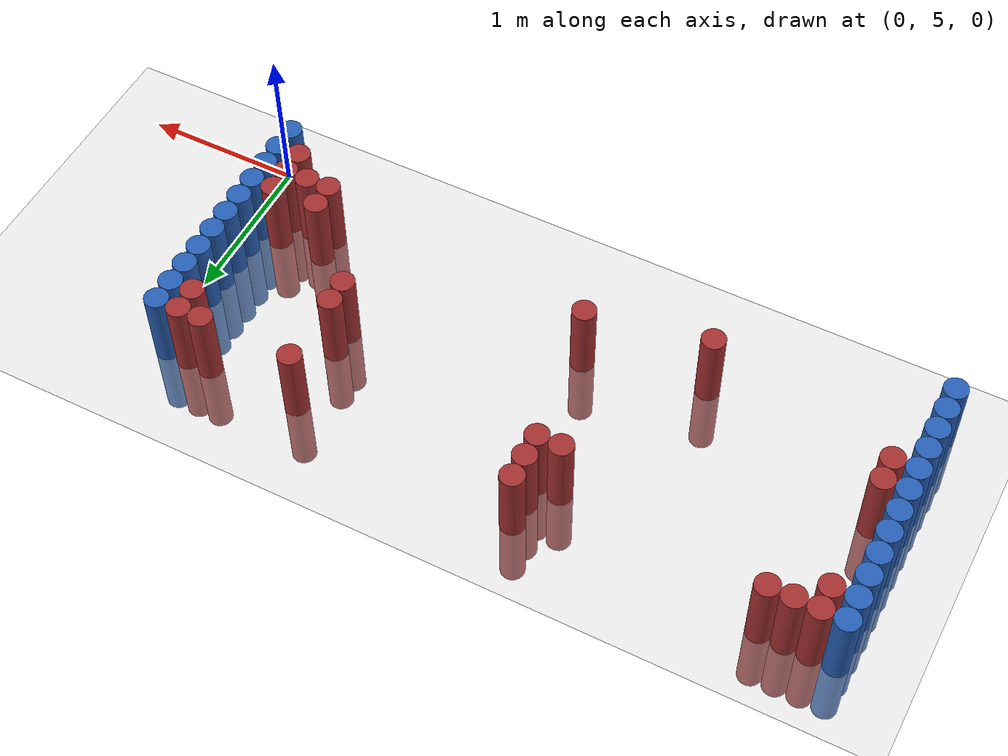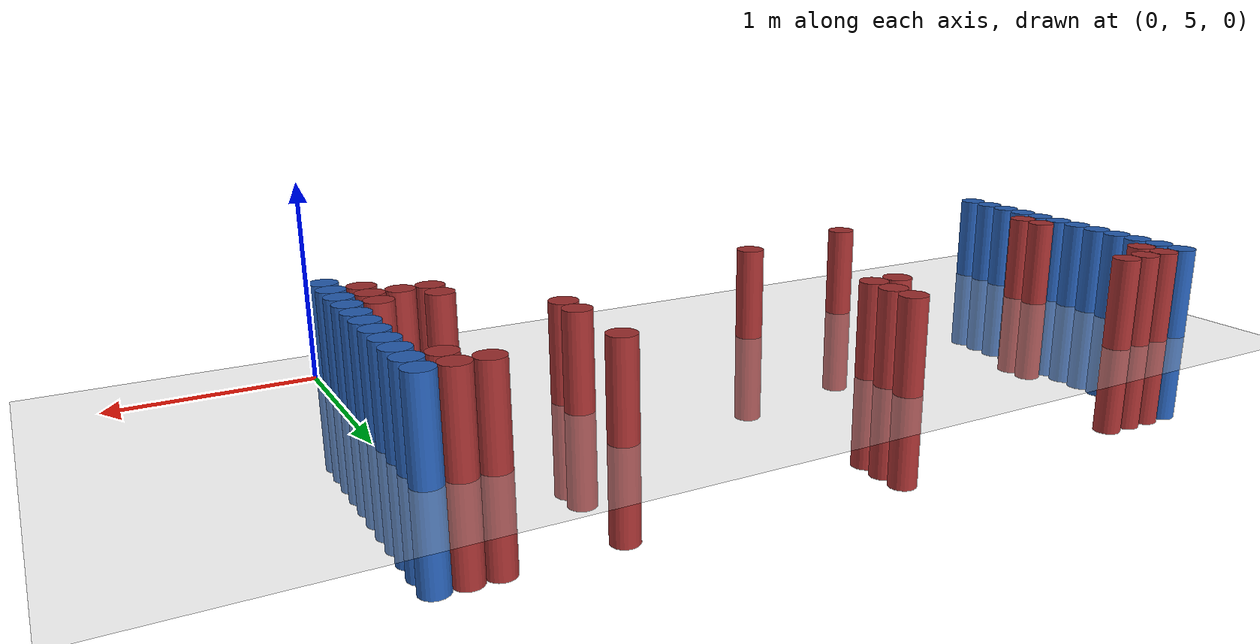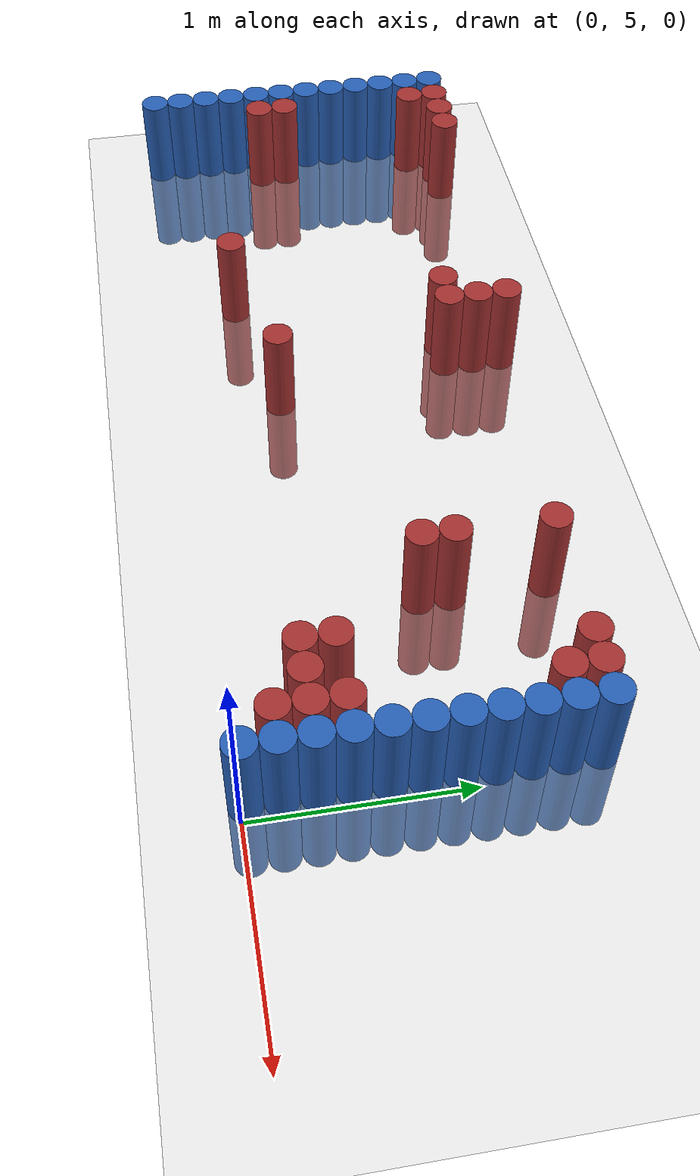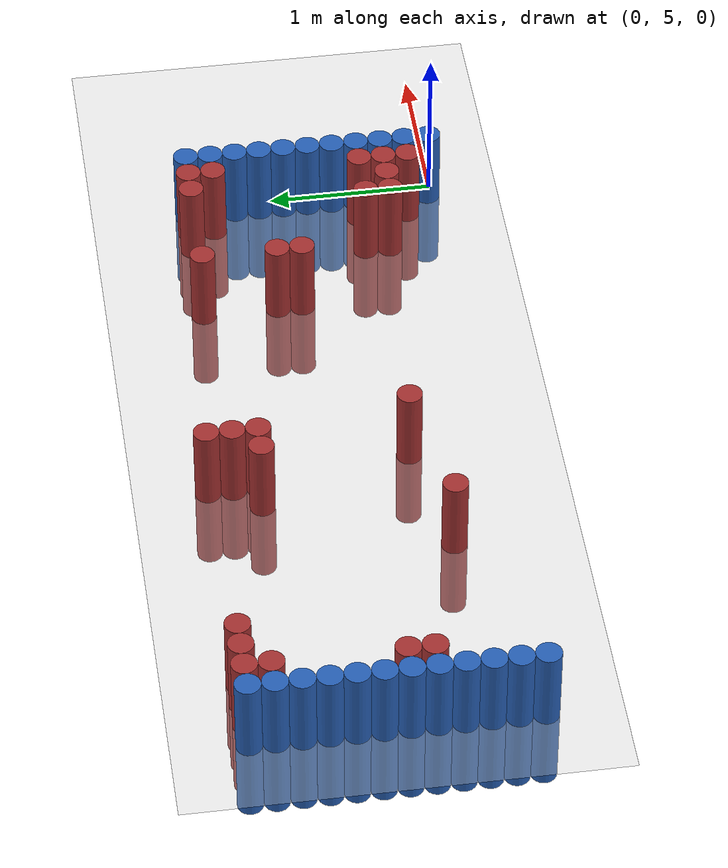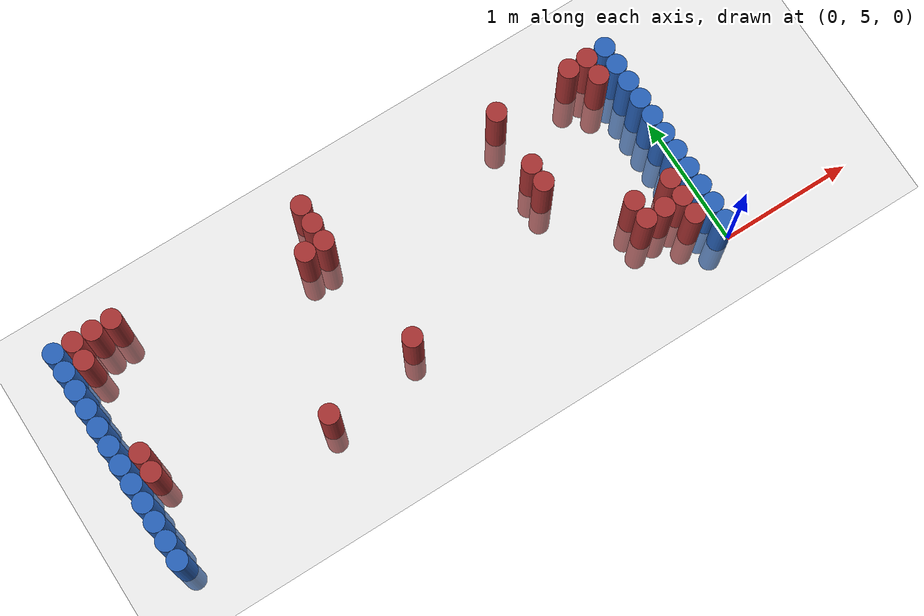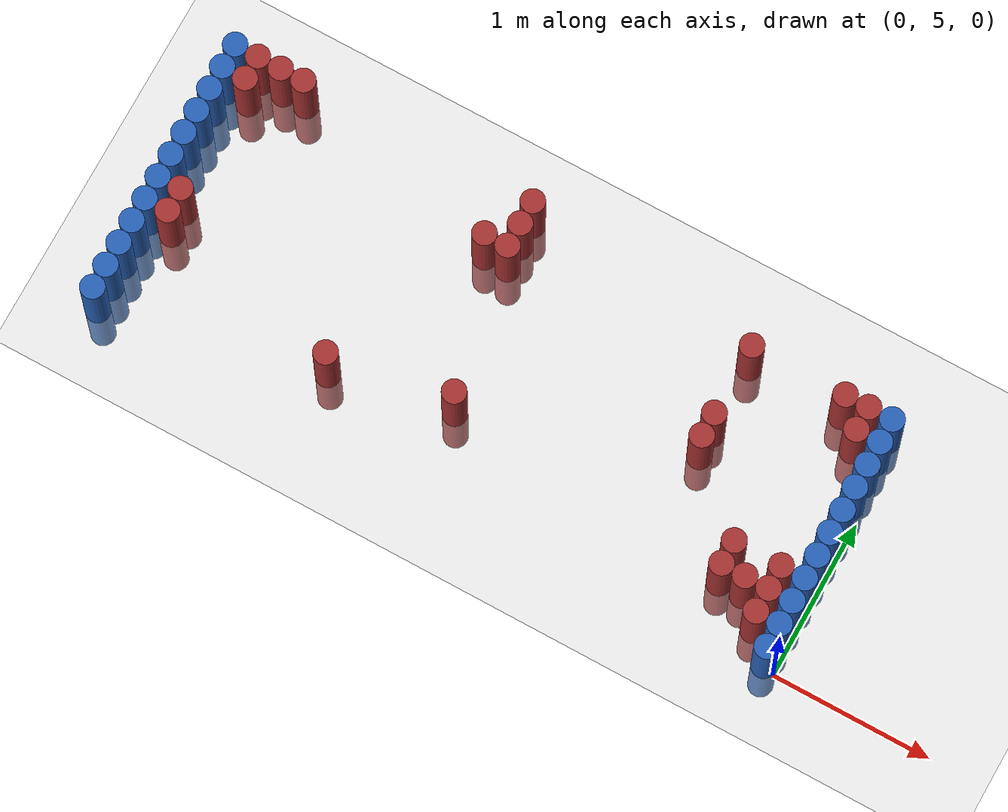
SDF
<sdf version="1.6">
 <world name="default">
  <model name="ground_plane">
   <static>1</static>
   <link name="link">
    <collision name="collision">
     <geometry><plane><normal>0 0 1</normal><size>100 100</size></plane></geometry>
     <surface><friction><ode><mu>100</mu><mu2>50</mu2></ode></friction></surface>
    </collision>
    <visual name="visual">
     <cast_shadows>0</cast_shadows>
     <geometry><plane><normal>0 0 1</normal><size>100 100</size></plane></geometry>
     <material>
      <script><uri>file://media/materials/scripts/gazebo.material</uri><name>Gazebo/Grey</name></script>
     </material>
    </visual>
   </link>
  </model>
  <model name="unit_cylinder_94">
   <static>1</static>
   <pose>-0.075000 5.025000 0.000000 0.000000 0.000000 0.000000</pose>
   <link name="link">
    <inertial>
     <mass>1</mass>
     <inertia><ixx>0.145833</ixx><ixy>0</ixy><ixz>0</ixz><iyy>0.145833</iyy><iyz>0</iyz><izz>0.125</izz></inertia>
    </inertial>
    <collision name="collision">
     <geometry><cylinder><radius>0.075000</radius><length>1</length></cylinder></geometry>
    </collision>
    <visual name="visual">
     <geometry><cylinder><radius>0.075000</radius><length>1</length></cylinder></geometry>
     <material>
      <ambient>0.152000 0.379000 0.720000 1</ambient>
      <diffuse>0.152000 0.379000 0.720000 1</diffuse>
     </material>
     <material>
      <script><name>Gazebo/Grey</name><uri>file://media/materials/scripts/gazebo.material</uri></script>
     </material>
    </visual>
   </link>
  </model>
  <model name="unit_cylinder_95">
   <static>1</static>
   <pose>-4.425000 5.025000 0.000000 0.000000 0.000000 0.000000</pose>
   <link name="link">
    <inertial>
     <mass>1</mass>
     <inertia><ixx>0.145833</ixx><ixy>0</ixy><ixz>0</ixz><iyy>0.145833</iyy><iyz>0</iyz><izz>0.125</izz></inertia>
    </inertial>
    <collision name="collision">
     <geometry><cylinder><radius>0.075000</radius><length>1</length></cylinder></geometry>
    </collision>
    <visual name="visual">
     <geometry><cylinder><radius>0.075000</radius><length>1</length></cylinder></geometry>
     <material>
      <ambient>0.152000 0.379000 0.720000 1</ambient>
      <diffuse>0.152000 0.379000 0.720000 1</diffuse>
     </material>
     <material>
      <script><name>Gazebo/Grey</name><uri>file://media/materials/scripts/gazebo.material</uri></script>
     </material>
    </visual>
   </link>
  </model>
  <model name="unit_cylinder_96">
   <static>1</static>
   <pose>-4.425000 5.175000 0.000000 0.000000 0.000000 0.000000</pose>
   <link name="link">
    <inertial>
     <mass>1</mass>
     <inertia><ixx>0.145833</ixx><ixy>0</ixy><ixz>0</ixz><iyy>0.145833</iyy><iyz>0</iyz><izz>0.125</izz></inertia>
    </inertial>
    <collision name="collision">
     <geometry><cylinder><radius>0.075000</radius><length>1</length></cylinder></geometry>
    </collision>
    <visual name="visual">
     <geometry><cylinder><radius>0.075000</radius><length>1</length></cylinder></geometry>
     <material>
      <ambient>0.152000 0.379000 0.720000 1</ambient>
      <diffuse>0.152000 0.379000 0.720000 1</diffuse>
     </material>
     <material>
      <script><name>Gazebo/Grey</name><uri>file://media/materials/scripts/gazebo.material</uri></script>
     </material>
    </visual>
   </link>
  </model>
  <model name="unit_cylinder_97">
   <static>1</static>
   <pose>-4.425000 5.325000 0.000000 0.000000 0.000000 0.000000</pose>
   <link name="link">
    <inertial>
     <mass>1</mass>
     <inertia><ixx>0.145833</ixx><ixy>0</ixy><ixz>0</ixz><iyy>0.145833</iyy><iyz>0</iyz><izz>0.125</izz></inertia>
    </inertial>
    <collision name="collision">
     <geometry><cylinder><radius>0.075000</radius><length>1</length></cylinder></geometry>
    </collision>
    <visual name="visual">
     <geometry><cylinder><radius>0.075000</radius><length>1</length></cylinder></geometry>
     <material>
      <ambient>0.152000 0.379000 0.720000 1</ambient>
      <diffuse>0.152000 0.379000 0.720000 1</diffuse>
     </material>
     <material>
      <script><name>Gazebo/Grey</name><uri>file://media/materials/scripts/gazebo.material</uri></script>
     </material>
    </visual>
   </link>
  </model>
  <model name="unit_cylinder_98">
   <static>1</static>
   <pose>-4.425000 5.475000 0.000000 0.000000 0.000000 0.000000</pose>
   <link name="link">
    <inertial>
     <mass>1</mass>
     <inertia><ixx>0.145833</ixx><ixy>0</ixy><ixz>0</ixz><iyy>0.145833</iyy><iyz>0</iyz><izz>0.125</izz></inertia>
    </inertial>
    <collision name="collision">
     <geometry><cylinder><radius>0.075000</radius><length>1</length></cylinder></geometry>
    </collision>
    <visual name="visual">
     <geometry><cylinder><radius>0.075000</radius><length>1</length></cylinder></geometry>
     <material>
      <ambient>0.152000 0.379000 0.720000 1</ambient>
      <diffuse>0.152000 0.379000 0.720000 1</diffuse>
     </material>
     <material>
      <script><name>Gazebo/Grey</name><uri>file://media/materials/scripts/gazebo.material</uri></script>
     </material>
    </visual>
   </link>
  </model>
  <model name="unit_cylinder_99">
   <static>1</static>
   <pose>-4.425000 5.625000 0.000000 0.000000 0.000000 0.000000</pose>
   <link name="link">
    <inertial>
     <mass>1</mass>
     <inertia><ixx>0.145833</ixx><ixy>0</ixy><ixz>0</ixz><iyy>0.145833</iyy><iyz>0</iyz><izz>0.125</izz></inertia>
    </inertial>
    <collision name="collision">
     <geometry><cylinder><radius>0.075000</radius><length>1</length></cylinder></geometry>
    </collision>
    <visual name="visual">
     <geometry><cylinder><radius>0.075000</radius><length>1</length></cylinder></geometry>
     <material>
      <ambient>0.152000 0.379000 0.720000 1</ambient>
      <diffuse>0.152000 0.379000 0.720000 1</diffuse>
     </material>
     <material>
      <script><name>Gazebo/Grey</name><uri>file://media/materials/scripts/gazebo.material</uri></script>
     </material>
    </visual>
   </link>
  </model>
  <model name="unit_cylinder_100">
   <static>1</static>
   <pose>-4.425000 5.775000 0.000000 0.000000 0.000000 0.000000</pose>
   <link name="link">
    <inertial>
     <mass>1</mass>
     <inertia><ixx>0.145833</ixx><ixy>0</ixy><ixz>0</ixz><iyy>0.145833</iyy><iyz>0</iyz><izz>0.125</izz></inertia>
    </inertial>
    <collision name="collision">
     <geometry><cylinder><radius>0.075000</radius><length>1</length></cylinder></geometry>
    </collision>
    <visual name="visual">
     <geometry><cylinder><radius>0.075000</radius><length>1</length></cylinder></geometry>
     <material>
      <ambient>0.152000 0.379000 0.720000 1</ambient>
      <diffuse>0.152000 0.379000 0.720000 1</diffuse>
     </material>
     <material>
      <script><name>Gazebo/Grey</name><uri>file://media/materials/scripts/gazebo.material</uri></script>
     </material>
    </visual>
   </link>
  </model>
  <model name="unit_cylinder_101">
   <static>1</static>
   <pose>-4.425000 5.925000 0.000000 0.000000 0.000000 0.000000</pose>
   <link name="link">
    <inertial>
     <mass>1</mass>
     <inertia><ixx>0.145833</ixx><ixy>0</ixy><ixz>0</ixz><iyy>0.145833</iyy><iyz>0</iyz><izz>0.125</izz></inertia>
    </inertial>
    <collision name="collision">
     <geometry><cylinder><radius>0.075000</radius><length>1</length></cylinder></geometry>
    </collision>
    <visual name="visual">
     <geometry><cylinder><radius>0.075000</radius><length>1</length></cylinder></geometry>
     <material>
      <ambient>0.152000 0.379000 0.720000 1</ambient>
      <diffuse>0.152000 0.379000 0.720000 1</diffuse>
     </material>
     <material>
      <script><name>Gazebo/Grey</name><uri>file://media/materials/scripts/gazebo.material</uri></script>
     </material>
    </visual>
   </link>
  </model>
  <model name="unit_cylinder_102">
   <static>1</static>
   <pose>-4.425000 6.075000 0.000000 0.000000 0.000000 0.000000</pose>
   <link name="link">
    <inertial>
     <mass>1</mass>
     <inertia><ixx>0.145833</ixx><ixy>0</ixy><ixz>0</ixz><iyy>0.145833</iyy><iyz>0</iyz><izz>0.125</izz></inertia>
    </inertial>
    <collision name="collision">
     <geometry><cylinder><radius>0.075000</radius><length>1</length></cylinder></geometry>
    </collision>
    <visual name="visual">
     <geometry><cylinder><radius>0.075000</radius><length>1</length></cylinder></geometry>
     <material>
      <ambient>0.152000 0.379000 0.720000 1</ambient>
      <diffuse>0.152000 0.379000 0.720000 1</diffuse>
     </material>
     <material>
      <script><name>Gazebo/Grey</name><uri>file://media/materials/scripts/gazebo.material</uri></script>
     </material>
    </visual>
   </link>
  </model>
  <model name="unit_cylinder_103">
   <static>1</static>
   <pose>-4.425000 6.225000 0.000000 0.000000 0.000000 0.000000</pose>
   <link name="link">
    <inertial>
     <mass>1</mass>
     <inertia><ixx>0.145833</ixx><ixy>0</ixy><ixz>0</ixz><iyy>0.145833</iyy><iyz>0</iyz><izz>0.125</izz></inertia>
    </inertial>
    <collision name="collision">
     <geometry><cylinder><radius>0.075000</radius><length>1</length></cylinder></geometry>
    </collision>
    <visual name="visual">
     <geometry><cylinder><radius>0.075000</radius><length>1</length></cylinder></geometry>
     <material>
      <ambient>0.152000 0.379000 0.720000 1</ambient>
      <diffuse>0.152000 0.379000 0.720000 1</diffuse>
     </material>
     <material>
      <script><name>Gazebo/Grey</name><uri>file://media/materials/scripts/gazebo.material</uri></script>
     </material>
    </visual>
   </link>
  </model>
  <model name="unit_cylinder_104">
   <static>1</static>
   <pose>-4.425000 6.375000 0.000000 0.000000 0.000000 0.000000</pose>
   <link name="link">
    <inertial>
     <mass>1</mass>
     <inertia><ixx>0.145833</ixx><ixy>0</ixy><ixz>0</ixz><iyy>0.145833</iyy><iyz>0</iyz><izz>0.125</izz></inertia>
    </inertial>
    <collision name="collision">
     <geometry><cylinder><radius>0.075000</radius><length>1</length></cylinder></geometry>
    </collision>
    <visual name="visual">
     <geometry><cylinder><radius>0.075000</radius><length>1</length></cylinder></geometry>
     <material>
      <ambient>0.152000 0.379000 0.720000 1</ambient>
      <diffuse>0.152000 0.379000 0.720000 1</diffuse>
     </material>
     <material>
      <script><name>Gazebo/Grey</name><uri>file://media/materials/scripts/gazebo.material</uri></script>
     </material>
    </visual>
   </link>
  </model>
  <model name="unit_cylinder_105">
   <static>1</static>
   <pose>-4.425000 6.525000 0.000000 0.000000 0.000000 0.000000</pose>
   <link name="link">
    <inertial>
     <mass>1</mass>
     <inertia><ixx>0.145833</ixx><ixy>0</ixy><ixz>0</ixz><iyy>0.145833</iyy><iyz>0</iyz><izz>0.125</izz></inertia>
    </inertial>
    <collision name="collision">
     <geometry><cylinder><radius>0.075000</radius><length>1</length></cylinder></geometry>
    </collision>
    <visual name="visual">
     <geometry><cylinder><radius>0.075000</radius><length>1</length></cylinder></geometry>
     <material>
      <ambient>0.152000 0.379000 0.720000 1</ambient>
      <diffuse>0.152000 0.379000 0.720000 1</diffuse>
     </material>
     <material>
      <script><name>Gazebo/Grey</name><uri>file://media/materials/scripts/gazebo.material</uri></script>
     </material>
    </visual>
   </link>
  </model>
  <model name="unit_cylinder_106">
   <static>1</static>
   <pose>-4.425000 6.675000 0.000000 0.000000 0.000000 0.000000</pose>
   <link name="link">
    <inertial>
     <mass>1</mass>
     <inertia><ixx>0.145833</ixx><ixy>0</ixy><ixz>0</ixz><iyy>0.145833</iyy><iyz>0</iyz><izz>0.125</izz></inertia>
    </inertial>
    <collision name="collision">
     <geometry><cylinder><radius>0.075000</radius><length>1</length></cylinder></geometry>
    </collision>
    <visual name="visual">
     <geometry><cylinder><radius>0.075000</radius><length>1</length></cylinder></geometry>
     <material>
      <ambient>0.152000 0.379000 0.720000 1</ambient>
      <diffuse>0.152000 0.379000 0.720000 1</diffuse>
     </material>
     <material>
      <script><name>Gazebo/Grey</name><uri>file://media/materials/scripts/gazebo.material</uri></script>
     </material>
    </visual>
   </link>
  </model>
  <model name="unit_cylinder_126">
   <static>1</static>
   <pose>-4.275000 5.625000 0.000000 0.000000 0.000000 0.000000</pose>
   <link name="link">
    <inertial>
     <mass>1</mass>
     <inertia><ixx>0.145833</ixx><ixy>0</ixy><ixz>0</ixz><iyy>0.145833</iyy><iyz>0</iyz><izz>0.125</izz></inertia>
    </inertial>
    <collision name="collision">
     <geometry><cylinder><radius>0.075000</radius><length>1</length></cylinder></geometry>
    </collision>
    <visual name="visual">
     <geometry><cylinder><radius>0.075000</radius><length>1</length></cylinder></geometry>
     <material>
      <ambient>0.648000 0.192000 0.192000 1</ambient>
      <diffuse>0.648000 0.192000 0.192000 1</diffuse>
     </material>
     <material>
      <script><name>Gazebo/Grey</name><uri>file://media/materials/scripts/gazebo.material</uri></script>
     </material>
    </visual>
   </link>
  </model>
  <model name="unit_cylinder_127">
   <static>1</static>
   <pose>-4.275000 5.775000 0.000000 0.000000 0.000000 0.000000</pose>
   <link name="link">
    <inertial>
     <mass>1</mass>
     <inertia><ixx>0.145833</ixx><ixy>0</ixy><ixz>0</ixz><iyy>0.145833</iyy><iyz>0</iyz><izz>0.125</izz></inertia>
    </inertial>
    <collision name="collision">
     <geometry><cylinder><radius>0.075000</radius><length>1</length></cylinder></geometry>
    </collision>
    <visual name="visual">
     <geometry><cylinder><radius>0.075000</radius><length>1</length></cylinder></geometry>
     <material>
      <ambient>0.648000 0.192000 0.192000 1</ambient>
      <diffuse>0.648000 0.192000 0.192000 1</diffuse>
     </material>
     <material>
      <script><name>Gazebo/Grey</name><uri>file://media/materials/scripts/gazebo.material</uri></script>
     </material>
    </visual>
   </link>
  </model>
  <model name="unit_cylinder_128">
   <static>1</static>
   <pose>-4.275000 6.525000 0.000000 0.000000 0.000000 0.000000</pose>
   <link name="link">
    <inertial>
     <mass>1</mass>
     <inertia><ixx>0.145833</ixx><ixy>0</ixy><ixz>0</ixz><iyy>0.145833</iyy><iyz>0</iyz><izz>0.125</izz></inertia>
    </inertial>
    <collision name="collision">
     <geometry><cylinder><radius>0.075000</radius><length>1</length></cylinder></geometry>
    </collision>
    <visual name="visual">
     <geometry><cylinder><radius>0.075000</radius><length>1</length></cylinder></geometry>
     <material>
      <ambient>0.648000 0.192000 0.192000 1</ambient>
      <diffuse>0.648000 0.192000 0.192000 1</diffuse>
     </material>
     <material>
      <script><name>Gazebo/Grey</name><uri>file://media/materials/scripts/gazebo.material</uri></script>
     </material>
    </visual>
   </link>
  </model>
  <model name="unit_cylinder_129">
   <static>1</static>
   <pose>-4.275000 6.675000 0.000000 0.000000 0.000000 0.000000</pose>
   <link name="link">
    <inertial>
     <mass>1</mass>
     <inertia><ixx>0.145833</ixx><ixy>0</ixy><ixz>0</ixz><iyy>0.145833</iyy><iyz>0</iyz><izz>0.125</izz></inertia>
    </inertial>
    <collision name="collision">
     <geometry><cylinder><radius>0.075000</radius><length>1</length></cylinder></geometry>
    </collision>
    <visual name="visual">
     <geometry><cylinder><radius>0.075000</radius><length>1</length></cylinder></geometry>
     <material>
      <ambient>0.648000 0.192000 0.192000 1</ambient>
      <diffuse>0.648000 0.192000 0.192000 1</diffuse>
     </material>
     <material>
      <script><name>Gazebo/Grey</name><uri>file://media/materials/scripts/gazebo.material</uri></script>
     </material>
    </visual>
   </link>
  </model>
  <model name="unit_cylinder_141">
   <static>1</static>
   <pose>-4.125000 6.675000 0.000000 0.000000 0.000000 0.000000</pose>
   <link name="link">
    <inertial>
     <mass>1</mass>
     <inertia><ixx>0.145833</ixx><ixy>0</ixy><ixz>0</ixz><iyy>0.145833</iyy><iyz>0</iyz><izz>0.125</izz></inertia>
    </inertial>
    <collision name="collision">
     <geometry><cylinder><radius>0.075000</radius><length>1</length></cylinder></geometry>
    </collision>
    <visual name="visual">
     <geometry><cylinder><radius>0.075000</radius><length>1</length></cylinder></geometry>
     <material>
      <ambient>0.648000 0.192000 0.192000 1</ambient>
      <diffuse>0.648000 0.192000 0.192000 1</diffuse>
     </material>
     <material>
      <script><name>Gazebo/Grey</name><uri>file://media/materials/scripts/gazebo.material</uri></script>
     </material>
    </visual>
   </link>
  </model>
  <model name="unit_cylinder_146">
   <static>1</static>
   <pose>-3.975000 6.675000 0.000000 0.000000 0.000000 0.000000</pose>
   <link name="link">
    <inertial>
     <mass>1</mass>
     <inertia><ixx>0.145833</ixx><ixy>0</ixy><ixz>0</ixz><iyy>0.145833</iyy><iyz>0</iyz><izz>0.125</izz></inertia>
    </inertial>
    <collision name="collision">
     <geometry><cylinder><radius>0.075000</radius><length>1</length></cylinder></geometry>
    </collision>
    <visual name="visual">
     <geometry><cylinder><radius>0.075000</radius><length>1</length></cylinder></geometry>
     <material>
      <ambient>0.648000 0.192000 0.192000 1</ambient>
      <diffuse>0.648000 0.192000 0.192000 1</diffuse>
     </material>
     <material>
      <script><name>Gazebo/Grey</name><uri>file://media/materials/scripts/gazebo.material</uri></script>
     </material>
    </visual>
   </link>
  </model>
  <model name="unit_cylinder_157">
   <static>1</static>
   <pose>-3.075000 5.325000 0.000000 0.000000 0.000000 0.000000</pose>
   <link name="link">
    <inertial>
     <mass>1</mass>
     <inertia><ixx>0.145833</ixx><ixy>0</ixy><ixz>0</ixz><iyy>0.145833</iyy><iyz>0</iyz><izz>0.125</izz></inertia>
    </inertial>
    <collision name="collision">
     <geometry><cylinder><radius>0.075000</radius><length>1</length></cylinder></geometry>
    </collision>
    <visual name="visual">
     <geometry><cylinder><radius>0.075000</radius><length>1</length></cylinder></geometry>
     <material>
      <ambient>0.648000 0.192000 0.192000 1</ambient>
      <diffuse>0.648000 0.192000 0.192000 1</diffuse>
     </material>
     <material>
      <script><name>Gazebo/Grey</name><uri>file://media/materials/scripts/gazebo.material</uri></script>
     </material>
    </visual>
   </link>
  </model>
  <model name="unit_cylinder_158">
   <static>1</static>
   <pose>-2.625000 6.375000 0.000000 0.000000 0.000000 0.000000</pose>
   <link name="link">
    <inertial>
     <mass>1</mass>
     <inertia><ixx>0.145833</ixx><ixy>0</ixy><ixz>0</ixz><iyy>0.145833</iyy><iyz>0</iyz><izz>0.125</izz></inertia>
    </inertial>
    <collision name="collision">
     <geometry><cylinder><radius>0.075000</radius><length>1</length></cylinder></geometry>
    </collision>
    <visual name="visual">
     <geometry><cylinder><radius>0.075000</radius><length>1</length></cylinder></geometry>
     <material>
      <ambient>0.648000 0.192000 0.192000 1</ambient>
      <diffuse>0.648000 0.192000 0.192000 1</diffuse>
     </material>
     <material>
      <script><name>Gazebo/Grey</name><uri>file://media/materials/scripts/gazebo.material</uri></script>
     </material>
    </visual>
   </link>
  </model>
  <model name="unit_cylinder_159">
   <static>1</static>
   <pose>-2.475000 6.375000 0.000000 0.000000 0.000000 0.000000</pose>
   <link name="link">
    <inertial>
     <mass>1</mass>
     <inertia><ixx>0.145833</ixx><ixy>0</ixy><ixz>0</ixz><iyy>0.145833</iyy><iyz>0</iyz><izz>0.125</izz></inertia>
    </inertial>
    <collision name="collision">
     <geometry><cylinder><radius>0.075000</radius><length>1</length></cylinder></geometry>
    </collision>
    <visual name="visual">
     <geometry><cylinder><radius>0.075000</radius><length>1</length></cylinder></geometry>
     <material>
      <ambient>0.648000 0.192000 0.192000 1</ambient>
      <diffuse>0.648000 0.192000 0.192000 1</diffuse>
     </material>
     <material>
      <script><name>Gazebo/Grey</name><uri>file://media/materials/scripts/gazebo.material</uri></script>
     </material>
    </visual>
   </link>
  </model>
  <model name="unit_cylinder_160">
   <static>1</static>
   <pose>-2.475000 6.525000 0.000000 0.000000 0.000000 0.000000</pose>
   <link name="link">
    <inertial>
     <mass>1</mass>
     <inertia><ixx>0.145833</ixx><ixy>0</ixy><ixz>0</ixz><iyy>0.145833</iyy><iyz>0</iyz><izz>0.125</izz></inertia>
    </inertial>
    <collision name="collision">
     <geometry><cylinder><radius>0.075000</radius><length>1</length></cylinder></geometry>
    </collision>
    <visual name="visual">
     <geometry><cylinder><radius>0.075000</radius><length>1</length></cylinder></geometry>
     <material>
      <ambient>0.648000 0.192000 0.192000 1</ambient>
      <diffuse>0.648000 0.192000 0.192000 1</diffuse>
     </material>
     <material>
      <script><name>Gazebo/Grey</name><uri>file://media/materials/scripts/gazebo.material</uri></script>
     </material>
    </visual>
   </link>
  </model>
  <model name="unit_cylinder_161">
   <static>1</static>
   <pose>-2.475000 6.675000 0.000000 0.000000 0.000000 0.000000</pose>
   <link name="link">
    <inertial>
     <mass>1</mass>
     <inertia><ixx>0.145833</ixx><ixy>0</ixy><ixz>0</ixz><iyy>0.145833</iyy><iyz>0</iyz><izz>0.125</izz></inertia>
    </inertial>
    <collision name="collision">
     <geometry><cylinder><radius>0.075000</radius><length>1</length></cylinder></geometry>
    </collision>
    <visual name="visual">
     <geometry><cylinder><radius>0.075000</radius><length>1</length></cylinder></geometry>
     <material>
      <ambient>0.648000 0.192000 0.192000 1</ambient>
      <diffuse>0.648000 0.192000 0.192000 1</diffuse>
     </material>
     <material>
      <script><name>Gazebo/Grey</name><uri>file://media/materials/scripts/gazebo.material</uri></script>
     </material>
    </visual>
   </link>
  </model>
  <model name="unit_cylinder_162">
   <static>1</static>
   <pose>-2.325000 5.475000 0.000000 0.000000 0.000000 0.000000</pose>
   <link name="link">
    <inertial>
     <mass>1</mass>
     <inertia><ixx>0.145833</ixx><ixy>0</ixy><ixz>0</ixz><iyy>0.145833</iyy><iyz>0</iyz><izz>0.125</izz></inertia>
    </inertial>
    <collision name="collision">
     <geometry><cylinder><radius>0.075000</radius><length>1</length></cylinder></geometry>
    </collision>
    <visual name="visual">
     <geometry><cylinder><radius>0.075000</radius><length>1</length></cylinder></geometry>
     <material>
      <ambient>0.648000 0.192000 0.192000 1</ambient>
      <diffuse>0.648000 0.192000 0.192000 1</diffuse>
     </material>
     <material>
      <script><name>Gazebo/Grey</name><uri>file://media/materials/scripts/gazebo.material</uri></script>
     </material>
    </visual>
   </link>
  </model>
  <model name="unit_cylinder_174">
   <static>1</static>
   <pose>-0.975000 5.925000 0.000000 0.000000 0.000000 0.000000</pose>
   <link name="link">
    <inertial>
     <mass>1</mass>
     <inertia><ixx>0.145833</ixx><ixy>0</ixy><ixz>0</ixz><iyy>0.145833</iyy><iyz>0</iyz><izz>0.125</izz></inertia>
    </inertial>
    <collision name="collision">
     <geometry><cylinder><radius>0.075000</radius><length>1</length></cylinder></geometry>
    </collision>
    <visual name="visual">
     <geometry><cylinder><radius>0.075000</radius><length>1</length></cylinder></geometry>
     <material>
      <ambient>0.648000 0.192000 0.192000 1</ambient>
      <diffuse>0.648000 0.192000 0.192000 1</diffuse>
     </material>
     <material>
      <script><name>Gazebo/Grey</name><uri>file://media/materials/scripts/gazebo.material</uri></script>
     </material>
    </visual>
   </link>
  </model>
  <model name="unit_cylinder_175">
   <static>1</static>
   <pose>-0.975000 6.075000 0.000000 0.000000 0.000000 0.000000</pose>
   <link name="link">
    <inertial>
     <mass>1</mass>
     <inertia><ixx>0.145833</ixx><ixy>0</ixy><ixz>0</ixz><iyy>0.145833</iyy><iyz>0</iyz><izz>0.125</izz></inertia>
    </inertial>
    <collision name="collision">
     <geometry><cylinder><radius>0.075000</radius><length>1</length></cylinder></geometry>
    </collision>
    <visual name="visual">
     <geometry><cylinder><radius>0.075000</radius><length>1</length></cylinder></geometry>
     <material>
      <ambient>0.648000 0.192000 0.192000 1</ambient>
      <diffuse>0.648000 0.192000 0.192000 1</diffuse>
     </material>
     <material>
      <script><name>Gazebo/Grey</name><uri>file://media/materials/scripts/gazebo.material</uri></script>
     </material>
    </visual>
   </link>
  </model>
  <model name="unit_cylinder_176">
   <static>1</static>
   <pose>-0.975000 6.525000 0.000000 0.000000 0.000000 0.000000</pose>
   <link name="link">
    <inertial>
     <mass>1</mass>
     <inertia><ixx>0.145833</ixx><ixy>0</ixy><ixz>0</ixz><iyy>0.145833</iyy><iyz>0</iyz><izz>0.125</izz></inertia>
    </inertial>
    <collision name="collision">
     <geometry><cylinder><radius>0.075000</radius><length>1</length></cylinder></geometry>
    </collision>
    <visual name="visual">
     <geometry><cylinder><radius>0.075000</radius><length>1</length></cylinder></geometry>
     <material>
      <ambient>0.648000 0.192000 0.192000 1</ambient>
      <diffuse>0.648000 0.192000 0.192000 1</diffuse>
     </material>
     <material>
      <script><name>Gazebo/Grey</name><uri>file://media/materials/scripts/gazebo.material</uri></script>
     </material>
    </visual>
   </link>
  </model>
  <model name="unit_cylinder_184">
   <static>1</static>
   <pose>-0.525000 5.325000 0.000000 0.000000 0.000000 0.000000</pose>
   <link name="link">
    <inertial>
     <mass>1</mass>
     <inertia><ixx>0.145833</ixx><ixy>0</ixy><ixz>0</ixz><iyy>0.145833</iyy><iyz>0</iyz><izz>0.125</izz></inertia>
    </inertial>
    <collision name="collision">
     <geometry><cylinder><radius>0.075000</radius><length>1</length></cylinder></geometry>
    </collision>
    <visual name="visual">
     <geometry><cylinder><radius>0.075000</radius><length>1</length></cylinder></geometry>
     <material>
      <ambient>0.648000 0.192000 0.192000 1</ambient>
      <diffuse>0.648000 0.192000 0.192000 1</diffuse>
     </material>
     <material>
      <script><name>Gazebo/Grey</name><uri>file://media/materials/scripts/gazebo.material</uri></script>
     </material>
    </visual>
   </link>
  </model>
  <model name="unit_cylinder_185">
   <static>1</static>
   <pose>-0.525000 5.475000 0.000000 0.000000 0.000000 0.000000</pose>
   <link name="link">
    <inertial>
     <mass>1</mass>
     <inertia><ixx>0.145833</ixx><ixy>0</ixy><ixz>0</ixz><iyy>0.145833</iyy><iyz>0</iyz><izz>0.125</izz></inertia>
    </inertial>
    <collision name="collision">
     <geometry><cylinder><radius>0.075000</radius><length>1</length></cylinder></geometry>
    </collision>
    <visual name="visual">
     <geometry><cylinder><radius>0.075000</radius><length>1</length></cylinder></geometry>
     <material>
      <ambient>0.648000 0.192000 0.192000 1</ambient>
      <diffuse>0.648000 0.192000 0.192000 1</diffuse>
     </material>
     <material>
      <script><name>Gazebo/Grey</name><uri>file://media/materials/scripts/gazebo.material</uri></script>
     </material>
    </visual>
   </link>
  </model>
  <model name="unit_cylinder_188">
   <static>1</static>
   <pose>-0.375000 5.325000 0.000000 0.000000 0.000000 0.000000</pose>
   <link name="link">
    <inertial>
     <mass>1</mass>
     <inertia><ixx>0.145833</ixx><ixy>0</ixy><ixz>0</ixz><iyy>0.145833</iyy><iyz>0</iyz><izz>0.125</izz></inertia>
    </inertial>
    <collision name="collision">
     <geometry><cylinder><radius>0.075000</radius><length>1</length></cylinder></geometry>
    </collision>
    <visual name="visual">
     <geometry><cylinder><radius>0.075000</radius><length>1</length></cylinder></geometry>
     <material>
      <ambient>0.648000 0.192000 0.192000 1</ambient>
      <diffuse>0.648000 0.192000 0.192000 1</diffuse>
     </material>
     <material>
      <script><name>Gazebo/Grey</name><uri>file://media/materials/scripts/gazebo.material</uri></script>
     </material>
    </visual>
   </link>
  </model>
  <model name="unit_cylinder_189">
   <static>1</static>
   <pose>-0.375000 6.525000 0.000000 0.000000 0.000000 0.000000</pose>
   <link name="link">
    <inertial>
     <mass>1</mass>
     <inertia><ixx>0.145833</ixx><ixy>0</ixy><ixz>0</ixz><iyy>0.145833</iyy><iyz>0</iyz><izz>0.125</izz></inertia>
    </inertial>
    <collision name="collision">
     <geometry><cylinder><radius>0.075000</radius><length>1</length></cylinder></geometry>
    </collision>
    <visual name="visual">
     <geometry><cylinder><radius>0.075000</radius><length>1</length></cylinder></geometry>
     <material>
      <ambient>0.648000 0.192000 0.192000 1</ambient>
      <diffuse>0.648000 0.192000 0.192000 1</diffuse>
     </material>
     <material>
      <script><name>Gazebo/Grey</name><uri>file://media/materials/scripts/gazebo.material</uri></script>
     </material>
    </visual>
   </link>
  </model>
  <model name="unit_cylinder_191">
   <static>1</static>
   <pose>-0.225000 5.175000 0.000000 0.000000 0.000000 0.000000</pose>
   <link name="link">
    <inertial>
     <mass>1</mass>
     <inertia><ixx>0.145833</ixx><ixy>0</ixy><ixz>0</ixz><iyy>0.145833</iyy><iyz>0</iyz><izz>0.125</izz></inertia>
    </inertial>
    <collision name="collision">
     <geometry><cylinder><radius>0.075000</radius><length>1</length></cylinder></geometry>
    </collision>
    <visual name="visual">
     <geometry><cylinder><radius>0.075000</radius><length>1</length></cylinder></geometry>
     <material>
      <ambient>0.648000 0.192000 0.192000 1</ambient>
      <diffuse>0.648000 0.192000 0.192000 1</diffuse>
     </material>
     <material>
      <script><name>Gazebo/Grey</name><uri>file://media/materials/scripts/gazebo.material</uri></script>
     </material>
    </visual>
   </link>
  </model>
  <model name="unit_cylinder_192">
   <static>1</static>
   <pose>-0.225000 5.325000 0.000000 0.000000 0.000000 0.000000</pose>
   <link name="link">
    <inertial>
     <mass>1</mass>
     <inertia><ixx>0.145833</ixx><ixy>0</ixy><ixz>0</ixz><iyy>0.145833</iyy><iyz>0</iyz><izz>0.125</izz></inertia>
    </inertial>
    <collision name="collision">
     <geometry><cylinder><radius>0.075000</radius><length>1</length></cylinder></geometry>
    </collision>
    <visual name="visual">
     <geometry><cylinder><radius>0.075000</radius><length>1</length></cylinder></geometry>
     <material>
      <ambient>0.648000 0.192000 0.192000 1</ambient>
      <diffuse>0.648000 0.192000 0.192000 1</diffuse>
     </material>
     <material>
      <script><name>Gazebo/Grey</name><uri>file://media/materials/scripts/gazebo.material</uri></script>
     </material>
    </visual>
   </link>
  </model>
  <model name="unit_cylinder_193">
   <static>1</static>
   <pose>-0.225000 5.475000 0.000000 0.000000 0.000000 0.000000</pose>
   <link name="link">
    <inertial>
     <mass>1</mass>
     <inertia><ixx>0.145833</ixx><ixy>0</ixy><ixz>0</ixz><iyy>0.145833</iyy><iyz>0</iyz><izz>0.125</izz></inertia>
    </inertial>
    <collision name="collision">
     <geometry><cylinder><radius>0.075000</radius><length>1</length></cylinder></geometry>
    </collision>
    <visual name="visual">
     <geometry><cylinder><radius>0.075000</radius><length>1</length></cylinder></geometry>
     <material>
      <ambient>0.648000 0.192000 0.192000 1</ambient>
      <diffuse>0.648000 0.192000 0.192000 1</diffuse>
     </material>
     <material>
      <script><name>Gazebo/Grey</name><uri>file://media/materials/scripts/gazebo.material</uri></script>
     </material>
    </visual>
   </link>
  </model>
  <model name="unit_cylinder_194">
   <static>1</static>
   <pose>-0.225000 6.375000 0.000000 0.000000 0.000000 0.000000</pose>
   <link name="link">
    <inertial>
     <mass>1</mass>
     <inertia><ixx>0.145833</ixx><ixy>0</ixy><ixz>0</ixz><iyy>0.145833</iyy><iyz>0</iyz><izz>0.125</izz></inertia>
    </inertial>
    <collision name="collision">
     <geometry><cylinder><radius>0.075000</radius><length>1</length></cylinder></geometry>
    </collision>
    <visual name="visual">
     <geometry><cylinder><radius>0.075000</radius><length>1</length></cylinder></geometry>
     <material>
      <ambient>0.648000 0.192000 0.192000 1</ambient>
      <diffuse>0.648000 0.192000 0.192000 1</diffuse>
     </material>
     <material>
      <script><name>Gazebo/Grey</name><uri>file://media/materials/scripts/gazebo.material</uri></script>
     </material>
    </visual>
   </link>
  </model>
  <model name="unit_cylinder_195">
   <static>1</static>
   <pose>-0.225000 6.525000 0.000000 0.000000 0.000000 0.000000</pose>
   <link name="link">
    <inertial>
     <mass>1</mass>
     <inertia><ixx>0.145833</ixx><ixy>0</ixy><ixz>0</ixz><iyy>0.145833</iyy><iyz>0</iyz><izz>0.125</izz></inertia>
    </inertial>
    <collision name="collision">
     <geometry><cylinder><radius>0.075000</radius><length>1</length></cylinder></geometry>
    </collision>
    <visual name="visual">
     <geometry><cylinder><radius>0.075000</radius><length>1</length></cylinder></geometry>
     <material>
      <ambient>0.648000 0.192000 0.192000 1</ambient>
      <diffuse>0.648000 0.192000 0.192000 1</diffuse>
     </material>
     <material>
      <script><name>Gazebo/Grey</name><uri>file://media/materials/scripts/gazebo.material</uri></script>
     </material>
    </visual>
   </link>
  </model>
  <model name="unit_cylinder_204">
   <static>1</static>
   <pose>-0.075000 5.175000 0.000000 0.000000 0.000000 0.000000</pose>
   <link name="link">
    <inertial>
     <mass>1</mass>
     <inertia><ixx>0.145833</ixx><ixy>0</ixy><ixz>0</ixz><iyy>0.145833</iyy><iyz>0</iyz><izz>0.125</izz></inertia>
    </inertial>
    <collision name="collision">
     <geometry><cylinder><radius>0.075000</radius><length>1</length></cylinder></geometry>
    </collision>
    <visual name="visual">
     <geometry><cylinder><radius>0.075000</radius><length>1</length></cylinder></geometry>
     <material>
      <ambient>0.152000 0.379000 0.720000 1</ambient>
      <diffuse>0.152000 0.379000 0.720000 1</diffuse>
     </material>
     <material>
      <script><name>Gazebo/Grey</name><uri>file://media/materials/scripts/gazebo.material</uri></script>
     </material>
    </visual>
   </link>
  </model>
  <model name="unit_cylinder_205">
   <static>1</static>
   <pose>-0.075000 5.325000 0.000000 0.000000 0.000000 0.000000</pose>
   <link name="link">
    <inertial>
     <mass>1</mass>
     <inertia><ixx>0.145833</ixx><ixy>0</ixy><ixz>0</ixz><iyy>0.145833</iyy><iyz>0</iyz><izz>0.125</izz></inertia>
    </inertial>
    <collision name="collision">
     <geometry><cylinder><radius>0.075000</radius><length>1</length></cylinder></geometry>
    </collision>
    <visual name="visual">
     <geometry><cylinder><radius>0.075000</radius><length>1</length></cylinder></geometry>
     <material>
      <ambient>0.152000 0.379000 0.720000 1</ambient>
      <diffuse>0.152000 0.379000 0.720000 1</diffuse>
     </material>
     <material>
      <script><name>Gazebo/Grey</name><uri>file://media/materials/scripts/gazebo.material</uri></script>
     </material>
    </visual>
   </link>
  </model>
  <model name="unit_cylinder_206">
   <static>1</static>
   <pose>-0.075000 5.475000 0.000000 0.000000 0.000000 0.000000</pose>
   <link name="link">
    <inertial>
     <mass>1</mass>
     <inertia><ixx>0.145833</ixx><ixy>0</ixy><ixz>0</ixz><iyy>0.145833</iyy><iyz>0</iyz><izz>0.125</izz></inertia>
    </inertial>
    <collision name="collision">
     <geometry><cylinder><radius>0.075000</radius><length>1</length></cylinder></geometry>
    </collision>
    <visual name="visual">
     <geometry><cylinder><radius>0.075000</radius><length>1</length></cylinder></geometry>
     <material>
      <ambient>0.152000 0.379000 0.720000 1</ambient>
      <diffuse>0.152000 0.379000 0.720000 1</diffuse>
     </material>
     <material>
      <script><name>Gazebo/Grey</name><uri>file://media/materials/scripts/gazebo.material</uri></script>
     </material>
    </visual>
   </link>
  </model>
  <model name="unit_cylinder_207">
   <static>1</static>
   <pose>-0.075000 5.625000 0.000000 0.000000 0.000000 0.000000</pose>
   <link name="link">
    <inertial>
     <mass>1</mass>
     <inertia><ixx>0.145833</ixx><ixy>0</ixy><ixz>0</ixz><iyy>0.145833</iyy><iyz>0</iyz><izz>0.125</izz></inertia>
    </inertial>
    <collision name="collision">
     <geometry><cylinder><radius>0.075000</radius><length>1</length></cylinder></geometry>
    </collision>
    <visual name="visual">
     <geometry><cylinder><radius>0.075000</radius><length>1</length></cylinder></geometry>
     <material>
      <ambient>0.152000 0.379000 0.720000 1</ambient>
      <diffuse>0.152000 0.379000 0.720000 1</diffuse>
     </material>
     <material>
      <script><name>Gazebo/Grey</name><uri>file://media/materials/scripts/gazebo.material</uri></script>
     </material>
    </visual>
   </link>
  </model>
  <model name="unit_cylinder_208">
   <static>1</static>
   <pose>-0.075000 5.775000 0.000000 0.000000 0.000000 0.000000</pose>
   <link name="link">
    <inertial>
     <mass>1</mass>
     <inertia><ixx>0.145833</ixx><ixy>0</ixy><ixz>0</ixz><iyy>0.145833</iyy><iyz>0</iyz><izz>0.125</izz></inertia>
    </inertial>
    <collision name="collision">
     <geometry><cylinder><radius>0.075000</radius><length>1</length></cylinder></geometry>
    </collision>
    <visual name="visual">
     <geometry><cylinder><radius>0.075000</radius><length>1</length></cylinder></geometry>
     <material>
      <ambient>0.152000 0.379000 0.720000 1</ambient>
      <diffuse>0.152000 0.379000 0.720000 1</diffuse>
     </material>
     <material>
      <script><name>Gazebo/Grey</name><uri>file://media/materials/scripts/gazebo.material</uri></script>
     </material>
    </visual>
   </link>
  </model>
  <model name="unit_cylinder_209">
   <static>1</static>
   <pose>-0.075000 5.925000 0.000000 0.000000 0.000000 0.000000</pose>
   <link name="link">
    <inertial>
     <mass>1</mass>
     <inertia><ixx>0.145833</ixx><ixy>0</ixy><ixz>0</ixz><iyy>0.145833</iyy><iyz>0</iyz><izz>0.125</izz></inertia>
    </inertial>
    <collision name="collision">
     <geometry><cylinder><radius>0.075000</radius><length>1</length></cylinder></geometry>
    </collision>
    <visual name="visual">
     <geometry><cylinder><radius>0.075000</radius><length>1</length></cylinder></geometry>
     <material>
      <ambient>0.152000 0.379000 0.720000 1</ambient>
      <diffuse>0.152000 0.379000 0.720000 1</diffuse>
     </material>
     <material>
      <script><name>Gazebo/Grey</name><uri>file://media/materials/scripts/gazebo.material</uri></script>
     </material>
    </visual>
   </link>
  </model>
  <model name="unit_cylinder_210">
   <static>1</static>
   <pose>-0.075000 6.075000 0.000000 0.000000 0.000000 0.000000</pose>
   <link name="link">
    <inertial>
     <mass>1</mass>
     <inertia><ixx>0.145833</ixx><ixy>0</ixy><ixz>0</ixz><iyy>0.145833</iyy><iyz>0</iyz><izz>0.125</izz></inertia>
    </inertial>
    <collision name="collision">
     <geometry><cylinder><radius>0.075000</radius><length>1</length></cylinder></geometry>
    </collision>
    <visual name="visual">
     <geometry><cylinder><radius>0.075000</radius><length>1</length></cylinder></geometry>
     <material>
      <ambient>0.152000 0.379000 0.720000 1</ambient>
      <diffuse>0.152000 0.379000 0.720000 1</diffuse>
     </material>
     <material>
      <script><name>Gazebo/Grey</name><uri>file://media/materials/scripts/gazebo.material</uri></script>
     </material>
    </visual>
   </link>
  </model>
  <model name="unit_cylinder_211">
   <static>1</static>
   <pose>-0.075000 6.225000 0.000000 0.000000 0.000000 0.000000</pose>
   <link name="link">
    <inertial>
     <mass>1</mass>
     <inertia><ixx>0.145833</ixx><ixy>0</ixy><ixz>0</ixz><iyy>0.145833</iyy><iyz>0</iyz><izz>0.125</izz></inertia>
    </inertial>
    <collision name="collision">
     <geometry><cylinder><radius>0.075000</radius><length>1</length></cylinder></geometry>
    </collision>
    <visual name="visual">
     <geometry><cylinder><radius>0.075000</radius><length>1</length></cylinder></geometry>
     <material>
      <ambient>0.152000 0.379000 0.720000 1</ambient>
      <diffuse>0.152000 0.379000 0.720000 1</diffuse>
     </material>
     <material>
      <script><name>Gazebo/Grey</name><uri>file://media/materials/scripts/gazebo.material</uri></script>
     </material>
    </visual>
   </link>
  </model>
  <model name="unit_cylinder_212">
   <static>1</static>
   <pose>-0.075000 6.375000 0.000000 0.000000 0.000000 0.000000</pose>
   <link name="link">
    <inertial>
     <mass>1</mass>
     <inertia><ixx>0.145833</ixx><ixy>0</ixy><ixz>0</ixz><iyy>0.145833</iyy><iyz>0</iyz><izz>0.125</izz></inertia>
    </inertial>
    <collision name="collision">
     <geometry><cylinder><radius>0.075000</radius><length>1</length></cylinder></geometry>
    </collision>
    <visual name="visual">
     <geometry><cylinder><radius>0.075000</radius><length>1</length></cylinder></geometry>
     <material>
      <ambient>0.152000 0.379000 0.720000 1</ambient>
      <diffuse>0.152000 0.379000 0.720000 1</diffuse>
     </material>
     <material>
      <script><name>Gazebo/Grey</name><uri>file://media/materials/scripts/gazebo.material</uri></script>
     </material>
    </visual>
   </link>
  </model>
  <model name="unit_cylinder_213">
   <static>1</static>
   <pose>-0.075000 6.525000 0.000000 0.000000 0.000000 0.000000</pose>
   <link name="link">
    <inertial>
     <mass>1</mass>
     <inertia><ixx>0.145833</ixx><ixy>0</ixy><ixz>0</ixz><iyy>0.145833</iyy><iyz>0</iyz><izz>0.125</izz></inertia>
    </inertial>
    <collision name="collision">
     <geometry><cylinder><radius>0.075000</radius><length>1</length></cylinder></geometry>
    </collision>
    <visual name="visual">
     <geometry><cylinder><radius>0.075000</radius><length>1</length></cylinder></geometry>
     <material>
      <ambient>0.152000 0.379000 0.720000 1</ambient>
      <diffuse>0.152000 0.379000 0.720000 1</diffuse>
     </material>
     <material>
      <script><name>Gazebo/Grey</name><uri>file://media/materials/scripts/gazebo.material</uri></script>
     </material>
    </visual>
   </link>
  </model>
 </world>
</sdf>
